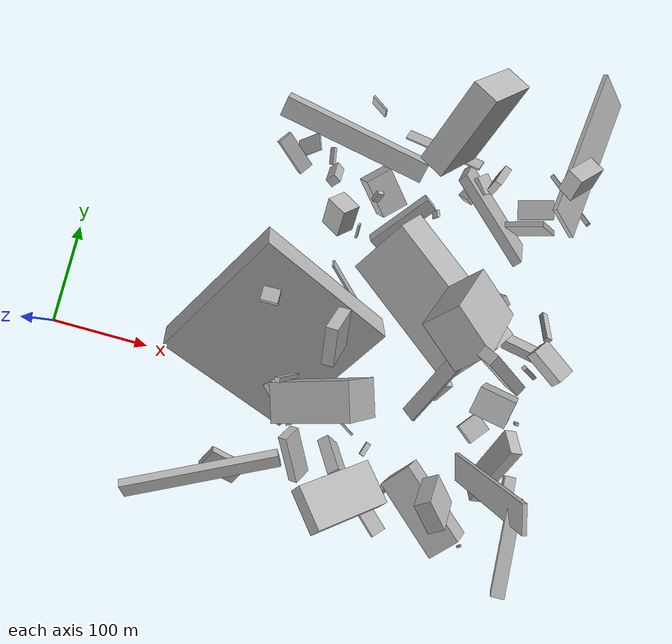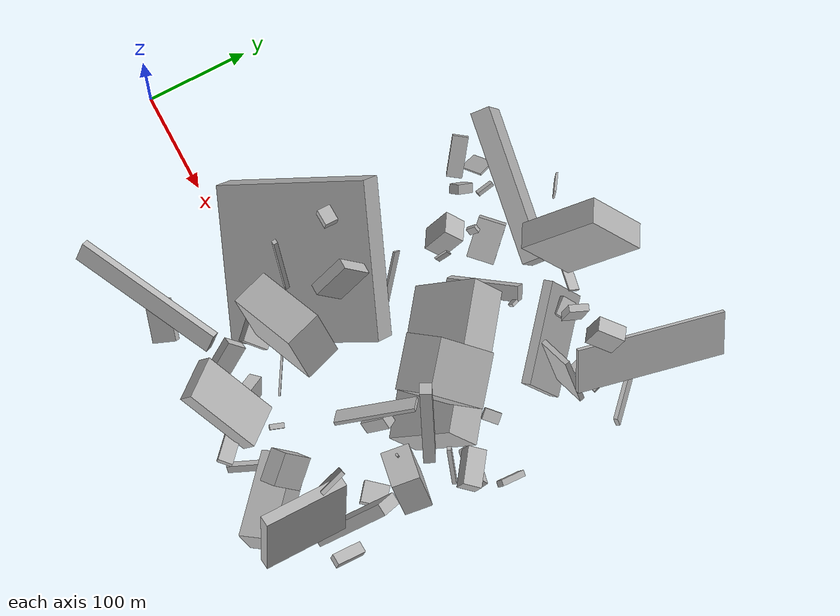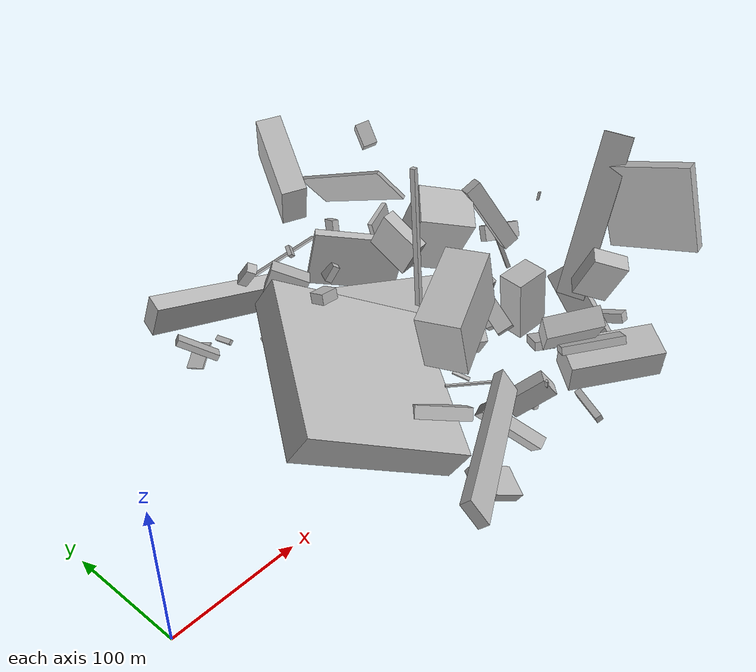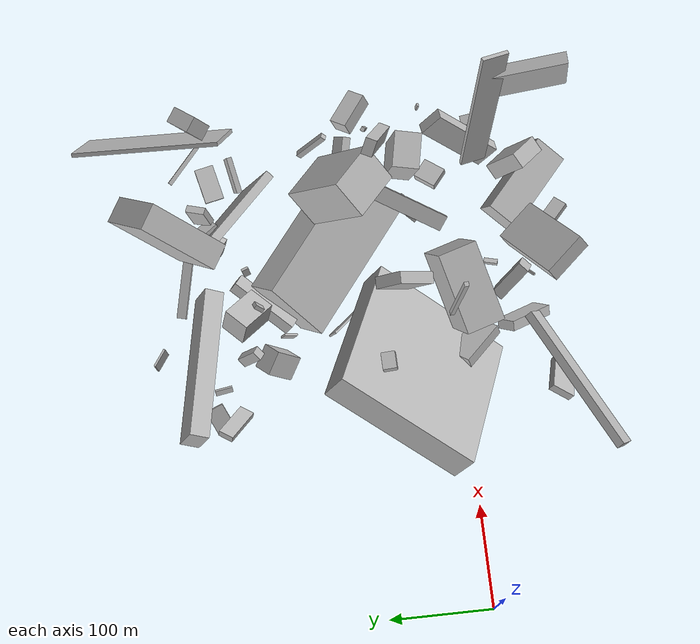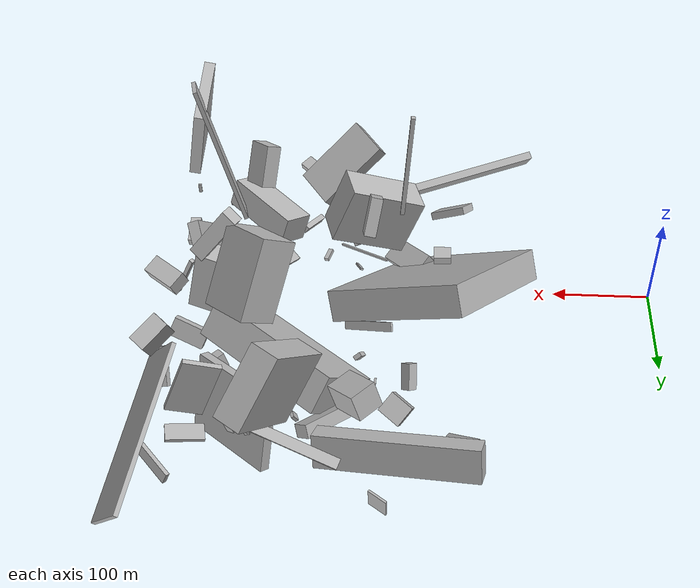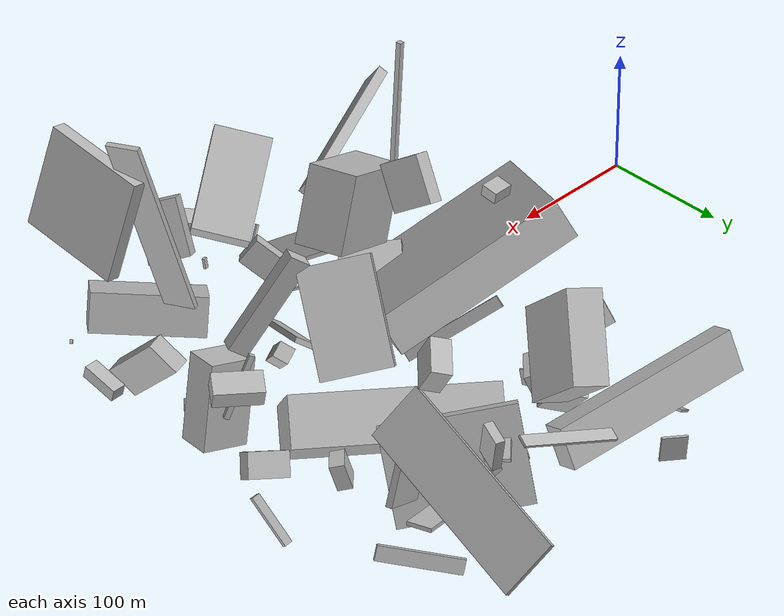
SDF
<sdf version="1.6">
 <world name="default">
  <model name="building_1">
   <static>0</static>
   <pose>264.849977985416 106.44058181233544 84.6204089097445 -2.01697700280411 -0.44693034375789936 2.7563679451558456</pose>
   <link name="link">
    <gravity>0</gravity>
    <pose>0 0 75.0 0 0 0</pose>
    <collision name="collision"><geometry><box><size>150 31 150</size></box></geometry></collision>
    <visual name="visual">
     <cast_shadows>0</cast_shadows>
     <geometry><box><size>150 31 150</size></box></geometry>
     <material>
      <script>
       <uri>model://HANNAS_wall/materials/scripts</uri>
       <uri>model://HANNAS_wall/materials/textures</uri>
       <name>vrc/HANNAS_wall</name>
      </script>
     </material>
    </visual>
   </link>
  </model>
  <model name="building_3">
   <static>0</static>
   <pose>263.7009953151315 -63.7383196793424 79.46305641383938 1.553918782447553 -0.6286492865791705 -1.1026360040005647</pose>
   <link name="link">
    <gravity>0</gravity>
    <pose>0 0 75.0 0 0 0</pose>
    <collision name="collision"><geometry><box><size>8 20 150</size></box></geometry></collision>
    <visual name="visual">
     <cast_shadows>0</cast_shadows>
     <geometry><box><size>8 20 150</size></box></geometry>
     <material>
      <script>
       <uri>model://HANNAS_wall/materials/scripts</uri>
       <uri>model://HANNAS_wall/materials/textures</uri>
       <name>vrc/HANNAS_wall</name>
      </script>
     </material>
    </visual>
   </link>
  </model>
  <model name="building_6">
   <static>0</static>
   <pose>383.94399075331796 95.2214970999192 106.78039868104145 0.9339067111695544 -0.1903255971860133 2.4547610325015774</pose>
   <link name="link">
    <gravity>0</gravity>
    <pose>0 0 20.0 0 0 0</pose>
    <collision name="collision"><geometry><box><size>52 79 40</size></box></geometry></collision>
    <visual name="visual">
     <cast_shadows>0</cast_shadows>
     <geometry><box><size>52 79 40</size></box></geometry>
     <material>
      <script>
       <uri>model://HANNAS_wall/materials/scripts</uri>
       <uri>model://HANNAS_wall/materials/textures</uri>
       <name>vrc/HANNAS_wall</name>
      </script>
     </material>
    </visual>
   </link>
  </model>
  <model name="building_8">
   <static>0</static>
   <pose>385.1747498785552 144.99763910502327 49.589972824680885 2.3259016913742108 -0.023929955335914098 -0.6515366699318969</pose>
   <link name="link">
    <gravity>0</gravity>
    <pose>0 0 38.0 0 0 0</pose>
    <collision name="collision"><geometry><box><size>150 38 76</size></box></geometry></collision>
    <visual name="visual">
     <cast_shadows>0</cast_shadows>
     <geometry><box><size>150 38 76</size></box></geometry>
     <material>
      <script>
       <uri>model://HANNAS_wall/materials/scripts</uri>
       <uri>model://HANNAS_wall/materials/textures</uri>
       <name>vrc/HANNAS_wall</name>
      </script>
     </material>
    </visual>
   </link>
  </model>
  <model name="building_12">
   <static>0</static>
   <pose>341.77327653657176 -40.976510238996866 7.428254835937576 1.727025056933067 0.1631977609604627 1.2708965915113848</pose>
   <link name="link">
    <gravity>0</gravity>
    <pose>0 0 2.5 0 0 0</pose>
    <collision name="collision"><geometry><box><size>14 4 5</size></box></geometry></collision>
    <visual name="visual">
     <cast_shadows>0</cast_shadows>
     <geometry><box><size>14 4 5</size></box></geometry>
     <material>
      <script>
       <uri>model://HANNAS_wall/materials/scripts</uri>
       <uri>model://HANNAS_wall/materials/textures</uri>
       <name>vrc/HANNAS_wall</name>
      </script>
     </material>
    </visual>
   </link>
  </model>
  <model name="building_16">
   <static>0</static>
   <pose>313.4151675149286 193.3849812421438 20.165825439241175 -2.1046970946129013 0.311330232934953 -2.2739135589272155</pose>
   <link name="link">
    <gravity>0</gravity>
    <pose>0 0 7.5 0 0 0</pose>
    <collision name="collision"><geometry><box><size>71 13 15</size></box></geometry></collision>
    <visual name="visual">
     <cast_shadows>0</cast_shadows>
     <geometry><box><size>71 13 15</size></box></geometry>
     <material>
      <script>
       <uri>model://HANNAS_wall/materials/scripts</uri>
       <uri>model://HANNAS_wall/materials/textures</uri>
       <name>vrc/HANNAS_wall</name>
      </script>
     </material>
    </visual>
   </link>
  </model>
  <model name="building_27">
   <static>0</static>
   <pose>300.19884573186056 4.540060153854442 81.78005194714694 0.0020173243054772043 -0.4248302830568203 0.30948812837808026</pose>
   <link name="link">
    <gravity>0</gravity>
    <pose>0 0 29.5 0 0 0</pose>
    <collision name="collision"><geometry><box><size>77 37 59</size></box></geometry></collision>
    <visual name="visual">
     <cast_shadows>0</cast_shadows>
     <geometry><box><size>77 37 59</size></box></geometry>
     <material>
      <script>
       <uri>model://HANNAS_wall/materials/scripts</uri>
       <uri>model://HANNAS_wall/materials/textures</uri>
       <name>vrc/HANNAS_wall</name>
      </script>
     </material>
    </visual>
   </link>
  </model>
  <model name="building_28">
   <static>0</static>
   <pose>250.27088266069612 175.07507582274286 27.637888533658046 -2.1757383056054986 -0.37748198373114317 -0.5509081720300691</pose>
   <link name="link">
    <gravity>0</gravity>
    <pose>0 0 10.5 0 0 0</pose>
    <collision name="collision"><geometry><box><size>24 32 21</size></box></geometry></collision>
    <visual name="visual">
     <cast_shadows>0</cast_shadows>
     <geometry><box><size>24 32 21</size></box></geometry>
     <material>
      <script>
       <uri>model://HANNAS_wall/materials/scripts</uri>
       <uri>model://HANNAS_wall/materials/textures</uri>
       <name>vrc/HANNAS_wall</name>
      </script>
     </material>
    </visual>
   </link>
  </model>
  <model name="building_35">
   <static>0</static>
   <pose>332.41015357844 -70.02120748040157 78.80988284577822 1.4460304723478818 0.25216577824603664 0.7967283314312058</pose>
   <link name="link">
    <gravity>0</gravity>
    <pose>0 0 26.5 0 0 0</pose>
    <collision name="collision"><geometry><box><size>14 7 53</size></box></geometry></collision>
    <visual name="visual">
     <cast_shadows>0</cast_shadows>
     <geometry><box><size>14 7 53</size></box></geometry>
     <material>
      <script>
       <uri>model://HANNAS_wall/materials/scripts</uri>
       <uri>model://HANNAS_wall/materials/textures</uri>
       <name>vrc/HANNAS_wall</name>
      </script>
     </material>
    </visual>
   </link>
  </model>
  <model name="building_37">
   <static>0</static>
   <pose>478.90384116490014 72.8757843723613 59.40028169801141 -0.1852054784174409 0.4100559340193807 2.4796875711877697</pose>
   <link name="link">
    <gravity>0</gravity>
    <pose>0 0 25.0 0 0 0</pose>
    <collision name="collision"><geometry><box><size>4 4 50</size></box></geometry></collision>
    <visual name="visual">
     <cast_shadows>0</cast_shadows>
     <geometry><box><size>4 4 50</size></box></geometry>
     <material>
      <script>
       <uri>model://HANNAS_wall/materials/scripts</uri>
       <uri>model://HANNAS_wall/materials/textures</uri>
       <name>vrc/HANNAS_wall</name>
      </script>
     </material>
    </visual>
   </link>
  </model>
  <model name="building_40">
   <static>0</static>
   <pose>426.83276334786706 -27.397830946614157 76.91111092455172 -0.15695904461921084 -0.20760866715655382 -2.8284619883293396</pose>
   <link name="link">
    <gravity>0</gravity>
    <pose>0 0 75.0 0 0 0</pose>
    <collision name="collision"><geometry><box><size>4 26 150</size></box></geometry></collision>
    <visual name="visual">
     <cast_shadows>0</cast_shadows>
     <geometry><box><size>4 26 150</size></box></geometry>
     <material>
      <script>
       <uri>model://HANNAS_wall/materials/scripts</uri>
       <uri>model://HANNAS_wall/materials/textures</uri>
       <name>vrc/HANNAS_wall</name>
      </script>
     </material>
    </visual>
   </link>
  </model>
  <model name="building_47">
   <static>0</static>
   <pose>279.42964077593916 58.84632375753875 151.57569232297772 1.2205018397641232 0.9221992203990589 1.2761099600544</pose>
   <link name="link">
    <gravity>0</gravity>
    <pose>0 0 5.5 0 0 0</pose>
    <collision name="collision"><geometry><box><size>36 38 11</size></box></geometry></collision>
    <visual name="visual">
     <cast_shadows>0</cast_shadows>
     <geometry><box><size>36 38 11</size></box></geometry>
     <material>
      <script>
       <uri>model://HANNAS_wall/materials/scripts</uri>
       <uri>model://HANNAS_wall/materials/textures</uri>
       <name>vrc/HANNAS_wall</name>
      </script>
     </material>
    </visual>
   </link>
  </model>
  <model name="building_48">
   <static>0</static>
   <pose>491.85999937119203 113.64472242578276 21.357083650907377 2.7595846978810323 0.6568551749512188 -1.9767523282468153</pose>
   <link name="link">
    <gravity>0</gravity>
    <pose>0 0 20.0 0 0 0</pose>
    <collision name="collision"><geometry><box><size>6 6 40</size></box></geometry></collision>
    <visual name="visual">
     <cast_shadows>0</cast_shadows>
     <geometry><box><size>6 6 40</size></box></geometry>
     <material>
      <script>
       <uri>model://HANNAS_wall/materials/scripts</uri>
       <uri>model://HANNAS_wall/materials/textures</uri>
       <name>vrc/HANNAS_wall</name>
      </script>
     </material>
    </visual>
   </link>
  </model>
  <model name="building_49">
   <static>0</static>
   <pose>467.4311597780821 94.81520644377954 24.298497867078407 -0.6224199346196262 0.9224113538434442 0.8329217152398347</pose>
   <link name="link">
    <gravity>0</gravity>
    <pose>0 0 4.5 0 0 0</pose>
    <collision name="collision"><geometry><box><size>19 36 9</size></box></geometry></collision>
    <visual name="visual">
     <cast_shadows>0</cast_shadows>
     <geometry><box><size>19 36 9</size></box></geometry>
     <material>
      <script>
       <uri>model://HANNAS_wall/materials/scripts</uri>
       <uri>model://HANNAS_wall/materials/textures</uri>
       <name>vrc/HANNAS_wall</name>
      </script>
     </material>
    </visual>
   </link>
  </model>
  <model name="building_50">
   <static>0</static>
   <pose>436.1111181656753 184.8401235655158 45.52982840303271 -1.1403158247743472 1.1570768370420978 1.2620464149353214</pose>
   <link name="link">
    <gravity>0</gravity>
    <pose>0 0 48.5 0 0 0</pose>
    <collision name="collision"><geometry><box><size>72 9 97</size></box></geometry></collision>
    <visual name="visual">
     <cast_shadows>0</cast_shadows>
     <geometry><box><size>72 9 97</size></box></geometry>
     <material>
      <script>
       <uri>model://HANNAS_wall/materials/scripts</uri>
       <uri>model://HANNAS_wall/materials/textures</uri>
       <name>vrc/HANNAS_wall</name>
      </script>
     </material>
    </visual>
   </link>
  </model>
  <model name="building_52">
   <static>0</static>
   <pose>453.15363794614495 210.00017500077206 125.73355198526679 1.928041041730047 0.6762885829623353 -3.0582700170921338</pose>
   <link name="link">
    <gravity>0</gravity>
    <pose>0 0 75.0 0 0 0</pose>
    <collision name="collision"><geometry><box><size>4 45 150</size></box></geometry></collision>
    <visual name="visual">
     <cast_shadows>0</cast_shadows>
     <geometry><box><size>4 45 150</size></box></geometry>
     <material>
      <script>
       <uri>model://HANNAS_wall/materials/scripts</uri>
       <uri>model://HANNAS_wall/materials/textures</uri>
       <name>vrc/HANNAS_wall</name>
      </script>
     </material>
    </visual>
   </link>
  </model>
  <model name="building_55">
   <static>0</static>
   <pose>338.8005197570581 239.67007641674851 126.96468109102702 -0.8158017061371099 -0.1535485285662675 -0.5323896993919464</pose>
   <link name="link">
    <gravity>0</gravity>
    <pose>0 0 42.0 0 0 0</pose>
    <collision name="collision"><geometry><box><size>25 65 84</size></box></geometry></collision>
    <visual name="visual">
     <cast_shadows>0</cast_shadows>
     <geometry><box><size>25 65 84</size></box></geometry>
     <material>
      <script>
       <uri>model://HANNAS_wall/materials/scripts</uri>
       <uri>model://HANNAS_wall/materials/textures</uri>
       <name>vrc/HANNAS_wall</name>
      </script>
     </material>
    </visual>
   </link>
  </model>
  <model name="building_57">
   <static>0</static>
   <pose>259.7636837720655 16.43916532561333 120.10430341129023 -0.09192797414868467 -0.01755377443773213 1.6507010341515724</pose>
   <link name="link">
    <gravity>0</gravity>
    <pose>0 0 56.5 0 0 0</pose>
    <collision name="collision"><geometry><box><size>4 4 113</size></box></geometry></collision>
    <visual name="visual">
     <cast_shadows>0</cast_shadows>
     <geometry><box><size>4 4 113</size></box></geometry>
     <material>
      <script>
       <uri>model://HANNAS_wall/materials/scripts</uri>
       <uri>model://HANNAS_wall/materials/textures</uri>
       <name>vrc/HANNAS_wall</name>
      </script>
     </material>
    </visual>
   </link>
  </model>
  <model name="building_63">
   <static>0</static>
   <pose>261.76488506835597 -2.5333747724866256 27.626175817056215 -1.0468640355143244 -0.12363113042927695 2.354926162627423</pose>
   <link name="link">
    <gravity>0</gravity>
    <pose>0 0 13.0 0 0 0</pose>
    <collision name="collision"><geometry><box><size>47 11 26</size></box></geometry></collision>
    <visual name="visual">
     <cast_shadows>0</cast_shadows>
     <geometry><box><size>47 11 26</size></box></geometry>
     <material>
      <script>
       <uri>model://HANNAS_wall/materials/scripts</uri>
       <uri>model://HANNAS_wall/materials/textures</uri>
       <name>vrc/HANNAS_wall</name>
      </script>
     </material>
    </visual>
   </link>
  </model>
  <model name="building_65">
   <static>0</static>
   <pose>250.28606308332283 259.9722137399621 35.848992242970326 0.1385574161805061 -0.39022792253669947 1.3593133731353375</pose>
   <link name="link">
    <gravity>0</gravity>
    <pose>0 0 16.0 0 0 0</pose>
    <collision name="collision"><geometry><box><size>19 150 32</size></box></geometry></collision>
    <visual name="visual">
     <cast_shadows>0</cast_shadows>
     <geometry><box><size>19 150 32</size></box></geometry>
     <material>
      <script>
       <uri>model://HANNAS_wall/materials/scripts</uri>
       <uri>model://HANNAS_wall/materials/textures</uri>
       <name>vrc/HANNAS_wall</name>
      </script>
     </material>
    </visual>
   </link>
  </model>
  <model name="building_74">
   <static>0</static>
   <pose>450.65029940867055 24.17627651441881 41.523613619651954 1.0517269497927673 -1.3188640270415584 -2.7950373361525345</pose>
   <link name="link">
    <gravity>0</gravity>
    <pose>0 0 13.5 0 0 0</pose>
    <collision name="collision"><geometry><box><size>66 36 27</size></box></geometry></collision>
    <visual name="visual">
     <cast_shadows>0</cast_shadows>
     <geometry><box><size>66 36 27</size></box></geometry>
     <material>
      <script>
       <uri>model://HANNAS_wall/materials/scripts</uri>
       <uri>model://HANNAS_wall/materials/textures</uri>
       <name>vrc/HANNAS_wall</name>
      </script>
     </material>
    </visual>
   </link>
  </model>
  <model name="building_75">
   <static>0</static>
   <pose>210.09689161275475 216.05733785943474 22.039633660847727 -0.20992375457774254 -1.0153600646673666 -0.415351651609451</pose>
   <link name="link">
    <gravity>0</gravity>
    <pose>0 0 20.0 0 0 0</pose>
    <collision name="collision"><geometry><box><size>6 15 40</size></box></geometry></collision>
    <visual name="visual">
     <cast_shadows>0</cast_shadows>
     <geometry><box><size>6 15 40</size></box></geometry>
     <material>
      <script>
       <uri>model://HANNAS_wall/materials/scripts</uri>
       <uri>model://HANNAS_wall/materials/textures</uri>
       <name>vrc/HANNAS_wall</name>
      </script>
     </material>
    </visual>
   </link>
  </model>
  <model name="building_77">
   <static>0</static>
   <pose>443.80924175121334 -107.41177282889113 42.67767873915898 -1.8575876461174032 1.1963244071273533 0.5812188273675348</pose>
   <link name="link">
    <gravity>0</gravity>
    <pose>0 0 42.5 0 0 0</pose>
    <collision name="collision"><geometry><box><size>30 34 85</size></box></geometry></collision>
    <visual name="visual">
     <cast_shadows>0</cast_shadows>
     <geometry><box><size>30 34 85</size></box></geometry>
     <material>
      <script>
       <uri>model://HANNAS_wall/materials/scripts</uri>
       <uri>model://HANNAS_wall/materials/textures</uri>
       <name>vrc/HANNAS_wall</name>
      </script>
     </material>
    </visual>
   </link>
  </model>
  <model name="building_83">
   <static>0</static>
   <pose>205.1508831914646 -101.51488816104703 27.923907552441626 1.1153265159937709 -0.46690983356553406 2.862778281353988</pose>
   <link name="link">
    <gravity>0</gravity>
    <pose>0 0 12.0 0 0 0</pose>
    <collision name="collision"><geometry><box><size>40 8 24</size></box></geometry></collision>
    <visual name="visual">
     <cast_shadows>0</cast_shadows>
     <geometry><box><size>40 8 24</size></box></geometry>
     <material>
      <script>
       <uri>model://HANNAS_wall/materials/scripts</uri>
       <uri>model://HANNAS_wall/materials/textures</uri>
       <name>vrc/HANNAS_wall</name>
      </script>
     </material>
    </visual>
   </link>
  </model>
  <model name="building_86">
   <static>0</static>
   <pose>435.0643428989624 210.2794820230467 73.85067551233358 1.5724740635311207 -0.4070667554763227 0.21633887281083966</pose>
   <link name="link">
    <gravity>0</gravity>
    <pose>0 0 2.5 0 0 0</pose>
    <collision name="collision"><geometry><box><size>35 63 5</size></box></geometry></collision>
    <visual name="visual">
     <cast_shadows>0</cast_shadows>
     <geometry><box><size>35 63 5</size></box></geometry>
     <material>
      <script>
       <uri>model://HANNAS_wall/materials/scripts</uri>
       <uri>model://HANNAS_wall/materials/textures</uri>
       <name>vrc/HANNAS_wall</name>
      </script>
     </material>
    </visual>
   </link>
  </model>
  <model name="building_87">
   <static>0</static>
   <pose>446.37364094943223 233.80812437015464 165.99664310537767 0.3390346639219746 -0.40263082046412324 -2.335242362291097</pose>
   <link name="link">
    <gravity>0</gravity>
    <pose>0 0 12.0 0 0 0</pose>
    <collision name="collision"><geometry><box><size>27 15 24</size></box></geometry></collision>
    <visual name="visual">
     <cast_shadows>0</cast_shadows>
     <geometry><box><size>27 15 24</size></box></geometry>
     <material>
      <script>
       <uri>model://HANNAS_wall/materials/scripts</uri>
       <uri>model://HANNAS_wall/materials/textures</uri>
       <name>vrc/HANNAS_wall</name>
      </script>
     </material>
    </visual>
   </link>
  </model>
  <model name="building_88">
   <static>0</static>
   <pose>471.01071539970746 -20.725317996987854 45.2222575306244 1.1474759824305505 -0.7013516435503787 -1.1896160898638812</pose>
   <link name="link">
    <gravity>0</gravity>
    <pose>0 0 6.0 0 0 0</pose>
    <collision name="collision"><geometry><box><size>26 86 12</size></box></geometry></collision>
    <visual name="visual">
     <cast_shadows>0</cast_shadows>
     <geometry><box><size>26 86 12</size></box></geometry>
     <material>
      <script>
       <uri>model://HANNAS_wall/materials/scripts</uri>
       <uri>model://HANNAS_wall/materials/textures</uri>
       <name>vrc/HANNAS_wall</name>
      </script>
     </material>
    </visual>
   </link>
  </model>
  <model name="building_90">
   <static>0</static>
   <pose>411.8450745567304 -51.38570469627577 96.29859334876485 0.44975429526099847 0.2972414691451999 -0.8352007327099311</pose>
   <link name="link">
    <gravity>0</gravity>
    <pose>0 0 21.5 0 0 0</pose>
    <collision name="collision"><geometry><box><size>31 16 43</size></box></geometry></collision>
    <visual name="visual">
     <cast_shadows>0</cast_shadows>
     <geometry><box><size>31 16 43</size></box></geometry>
     <material>
      <script>
       <uri>model://HANNAS_wall/materials/scripts</uri>
       <uri>model://HANNAS_wall/materials/textures</uri>
       <name>vrc/HANNAS_wall</name>
      </script>
     </material>
    </visual>
   </link>
  </model>
  <model name="building_92">
   <static>0</static>
   <pose>392.45933640472003 239.87561676876686 67.67206115456364 -0.018735481827428468 -0.22043409443138365 -1.912399233479467</pose>
   <link name="link">
    <gravity>0</gravity>
    <pose>0 0 14.0 0 0 0</pose>
    <collision name="collision"><geometry><box><size>19 7 28</size></box></geometry></collision>
    <visual name="visual">
     <cast_shadows>0</cast_shadows>
     <geometry><box><size>19 7 28</size></box></geometry>
     <material>
      <script>
       <uri>model://HANNAS_wall/materials/scripts</uri>
       <uri>model://HANNAS_wall/materials/textures</uri>
       <name>vrc/HANNAS_wall</name>
      </script>
     </material>
    </visual>
   </link>
  </model>
  <model name="building_98">
   <static>0</static>
   <pose>451.95776140442206 273.7369989159128 28.841291446256697 0.9773745149831747 1.1387544057573977 0.26525497697860395</pose>
   <link name="link">
    <gravity>0</gravity>
    <pose>0 0 30.5 0 0 0</pose>
    <collision name="collision"><geometry><box><size>11 4 61</size></box></geometry></collision>
    <visual name="visual">
     <cast_shadows>0</cast_shadows>
     <geometry><box><size>11 4 61</size></box></geometry>
     <material>
      <script>
       <uri>model://HANNAS_wall/materials/scripts</uri>
       <uri>model://HANNAS_wall/materials/textures</uri>
       <name>vrc/HANNAS_wall</name>
      </script>
     </material>
    </visual>
   </link>
  </model>
  <model name="building_100">
   <static>0</static>
   <pose>377.479690519708 244.84839736876222 70.08655066058898 1.6894655419196818 -0.9687932270828155 0.5872994060018284</pose>
   <link name="link">
    <gravity>0</gravity>
    <pose>0 0 9.0 0 0 0</pose>
    <collision name="collision"><geometry><box><size>6 15 18</size></box></geometry></collision>
    <visual name="visual">
     <cast_shadows>0</cast_shadows>
     <geometry><box><size>6 15 18</size></box></geometry>
     <material>
      <script>
       <uri>model://HANNAS_wall/materials/scripts</uri>
       <uri>model://HANNAS_wall/materials/textures</uri>
       <name>vrc/HANNAS_wall</name>
      </script>
     </material>
    </visual>
   </link>
  </model>
  <model name="building_102">
   <static>0</static>
   <pose>467.27584512804583 98.59354719825699 93.30717547075552 -1.4170549191829778 1.1955061132500675 -2.05189091665361</pose>
   <link name="link">
    <gravity>0</gravity>
    <pose>0 0 18.0 0 0 0</pose>
    <collision name="collision"><geometry><box><size>16 18 36</size></box></geometry></collision>
    <visual name="visual">
     <cast_shadows>0</cast_shadows>
     <geometry><box><size>16 18 36</size></box></geometry>
     <material>
      <script>
       <uri>model://HANNAS_wall/materials/scripts</uri>
       <uri>model://HANNAS_wall/materials/textures</uri>
       <name>vrc/HANNAS_wall</name>
      </script>
     </material>
    </visual>
   </link>
  </model>
  <model name="building_105">
   <static>0</static>
   <pose>317.63186495360634 -51.61360641765177 40.87970103768118 1.9115428353868684 0.8678070853848543 -0.5336680220454489</pose>
   <link name="link">
    <gravity>0</gravity>
    <pose>0 0 6.0 0 0 0</pose>
    <collision name="collision"><geometry><box><size>21 40 12</size></box></geometry></collision>
    <visual name="visual">
     <cast_shadows>0</cast_shadows>
     <geometry><box><size>21 40 12</size></box></geometry>
     <material>
      <script>
       <uri>model://HANNAS_wall/materials/scripts</uri>
       <uri>model://HANNAS_wall/materials/textures</uri>
       <name>vrc/HANNAS_wall</name>
      </script>
     </material>
    </visual>
   </link>
  </model>
  <model name="building_110">
   <static>0</static>
   <pose>329.80202670287576 -75.77832969426164 109.245681759691 -2.8488475330830303 -0.6270993647107114 -2.6102145863844335</pose>
   <link name="link">
    <gravity>0</gravity>
    <pose>0 0 8.0 0 0 0</pose>
    <collision name="collision"><geometry><box><size>80 43 16</size></box></geometry></collision>
    <visual name="visual">
     <cast_shadows>0</cast_shadows>
     <geometry><box><size>80 43 16</size></box></geometry>
     <material>
      <script>
       <uri>model://HANNAS_wall/materials/scripts</uri>
       <uri>model://HANNAS_wall/materials/textures</uri>
       <name>vrc/HANNAS_wall</name>
      </script>
     </material>
    </visual>
   </link>
  </model>
  <model name="building_113">
   <static>0</static>
   <pose>428.3448277975974 140.86497677214334 24.65702175996998 -2.733790810327212 1.2868097180329694 2.7302953840778725</pose>
   <link name="link">
    <gravity>0</gravity>
    <pose>0 0 5.5 0 0 0</pose>
    <collision name="collision"><geometry><box><size>23 16 11</size></box></geometry></collision>
    <visual name="visual">
     <cast_shadows>0</cast_shadows>
     <geometry><box><size>23 16 11</size></box></geometry>
     <material>
      <script>
       <uri>model://HANNAS_wall/materials/scripts</uri>
       <uri>model://HANNAS_wall/materials/textures</uri>
       <name>vrc/HANNAS_wall</name>
      </script>
     </material>
    </visual>
   </link>
  </model>
  <model name="building_117">
   <static>0</static>
   <pose>210.6770748803418 234.32947793031127 14.301480415176933 1.7698114893841186 0.6395602109697786 -2.66987177910834</pose>
   <link name="link">
    <gravity>0</gravity>
    <pose>0 0 9.0 0 0 0</pose>
    <collision name="collision"><geometry><box><size>27 2 18</size></box></geometry></collision>
    <visual name="visual">
     <cast_shadows>0</cast_shadows>
     <geometry><box><size>27 2 18</size></box></geometry>
     <material>
      <script>
       <uri>model://HANNAS_wall/materials/scripts</uri>
       <uri>model://HANNAS_wall/materials/textures</uri>
       <name>vrc/HANNAS_wall</name>
      </script>
     </material>
    </visual>
   </link>
  </model>
  <model name="building_120">
   <static>0</static>
   <pose>388.9524949444834 29.46554089146433 40.226598946926416 -0.6061786752364379 0.6063220215545979 0.18842489412013746</pose>
   <link name="link">
    <gravity>0</gravity>
    <pose>0 0 14.0 0 0 0</pose>
    <collision name="collision"><geometry><box><size>12 12 28</size></box></geometry></collision>
    <visual name="visual">
     <cast_shadows>0</cast_shadows>
     <geometry><box><size>12 12 28</size></box></geometry>
     <material>
      <script>
       <uri>model://HANNAS_wall/materials/scripts</uri>
       <uri>model://HANNAS_wall/materials/textures</uri>
       <name>vrc/HANNAS_wall</name>
      </script>
     </material>
    </visual>
   </link>
  </model>
  <model name="building_121">
   <static>0</static>
   <pose>300.7354698022841 269.4481436545935 54.23933508618187 -0.7757810223037184 1.1102333114887952 -1.0606333120783609</pose>
   <link name="link">
    <gravity>0</gravity>
    <pose>0 0 40.0 0 0 0</pose>
    <collision name="collision"><geometry><box><size>2 10 80</size></box></geometry></collision>
    <visual name="visual">
     <cast_shadows>0</cast_shadows>
     <geometry><box><size>2 10 80</size></box></geometry>
     <material>
      <script>
       <uri>model://HANNAS_wall/materials/scripts</uri>
       <uri>model://HANNAS_wall/materials/textures</uri>
       <name>vrc/HANNAS_wall</name>
      </script>
     </material>
    </visual>
   </link>
  </model>
  <model name="building_123">
   <static>0</static>
   <pose>304.043221773038 5.949285109548616 35.90923090087831 -0.5826594500570483 -0.9269464965059628 -2.2270482916257834</pose>
   <link name="link">
    <gravity>0</gravity>
    <pose>0 0 1.5 0 0 0</pose>
    <collision name="collision"><geometry><box><size>2 16 3</size></box></geometry></collision>
    <visual name="visual">
     <cast_shadows>0</cast_shadows>
     <geometry><box><size>2 16 3</size></box></geometry>
     <material>
      <script>
       <uri>model://HANNAS_wall/materials/scripts</uri>
       <uri>model://HANNAS_wall/materials/textures</uri>
       <name>vrc/HANNAS_wall</name>
      </script>
     </material>
    </visual>
   </link>
  </model>
  <model name="building_125">
   <static>0</static>
   <pose>278.4369606258404 169.9851925936862 30.80545629070174 -0.08827197197309776 -0.3611642621064791 1.58031113577038</pose>
   <link name="link">
    <gravity>0</gravity>
    <pose>0 0 6.0 0 0 0</pose>
    <collision name="collision"><geometry><box><size>13 2 12</size></box></geometry></collision>
    <visual name="visual">
     <cast_shadows>0</cast_shadows>
     <geometry><box><size>13 2 12</size></box></geometry>
     <material>
      <script>
       <uri>model://HANNAS_wall/materials/scripts</uri>
       <uri>model://HANNAS_wall/materials/textures</uri>
       <name>vrc/HANNAS_wall</name>
      </script>
     </material>
    </visual>
   </link>
  </model>
  <model name="building_127">
   <static>0</static>
   <pose>389.26476839987953 39.86866911599325 65.87080039002132 -0.5847466538658214 -0.39539639821440753 1.1539597967627635</pose>
   <link name="link">
    <gravity>0</gravity>
    <pose>0 0 2.0 0 0 0</pose>
    <collision name="collision"><geometry><box><size>80 16 4</size></box></geometry></collision>
    <visual name="visual">
     <cast_shadows>0</cast_shadows>
     <geometry><box><size>80 16 4</size></box></geometry>
     <material>
      <script>
       <uri>model://HANNAS_wall/materials/scripts</uri>
       <uri>model://HANNAS_wall/materials/textures</uri>
       <name>vrc/HANNAS_wall</name>
      </script>
     </material>
    </visual>
   </link>
  </model>
  <model name="building_130">
   <static>0</static>
   <pose>367.92088179545055 -87.10511300245533 15.317137647129664 -2.7158278016906965 0.9724128887988529 -0.10730039759390664</pose>
   <link name="link">
    <gravity>0</gravity>
    <pose>0 0 3.0 0 0 0</pose>
    <collision name="collision"><geometry><box><size>8 33 6</size></box></geometry></collision>
    <visual name="visual">
     <cast_shadows>0</cast_shadows>
     <geometry><box><size>8 33 6</size></box></geometry>
     <material>
      <script>
       <uri>model://HANNAS_wall/materials/scripts</uri>
       <uri>model://HANNAS_wall/materials/textures</uri>
       <name>vrc/HANNAS_wall</name>
      </script>
     </material>
    </visual>
   </link>
  </model>
  <model name="building_131">
   <static>0</static>
   <pose>218.8245856010361 78.31079779228199 119.43919987968472 -0.1561037657838934 -0.0005595667777544423 0.024042447532744635</pose>
   <link name="link">
    <gravity>0</gravity>
    <pose>0 0 4.5 0 0 0</pose>
    <collision name="collision"><geometry><box><size>16 13 9</size></box></geometry></collision>
    <visual name="visual">
     <cast_shadows>0</cast_shadows>
     <geometry><box><size>16 13 9</size></box></geometry>
     <material>
      <script>
       <uri>model://HANNAS_wall/materials/scripts</uri>
       <uri>model://HANNAS_wall/materials/textures</uri>
       <name>vrc/HANNAS_wall</name>
      </script>
     </material>
    </visual>
   </link>
  </model>
  <model name="building_132">
   <static>0</static>
   <pose>300.95164651770824 215.00876672239744 68.98656019601341 -1.4128411096798645 1.1717777340362738 2.49855107388524</pose>
   <link name="link">
    <gravity>0</gravity>
    <pose>0 0 13.0 0 0 0</pose>
    <collision name="collision"><geometry><box><size>25 38 26</size></box></geometry></collision>
    <visual name="visual">
     <cast_shadows>0</cast_shadows>
     <geometry><box><size>25 38 26</size></box></geometry>
     <material>
      <script>
       <uri>model://HANNAS_wall/materials/scripts</uri>
       <uri>model://HANNAS_wall/materials/textures</uri>
       <name>vrc/HANNAS_wall</name>
      </script>
     </material>
    </visual>
   </link>
  </model>
  <model name="building_139">
   <static>0</static>
   <pose>487.9056293236978 -27.891528112947412 31.564805329108054 -0.030442968896895423 -1.3068134939842804 1.6372197580345815</pose>
   <link name="link">
    <gravity>0</gravity>
    <pose>0 0 14.5 0 0 0</pose>
    <collision name="collision"><geometry><box><size>10 11 29</size></box></geometry></collision>
    <visual name="visual">
     <cast_shadows>0</cast_shadows>
     <geometry><box><size>10 11 29</size></box></geometry>
     <material>
      <script>
       <uri>model://HANNAS_wall/materials/scripts</uri>
       <uri>model://HANNAS_wall/materials/textures</uri>
       <name>vrc/HANNAS_wall</name>
      </script>
     </material>
    </visual>
   </link>
  </model>
  <model name="building_141">
   <static>0</static>
   <pose>379.8175485241178 231.19051053065743 42.98647748270751 0.15796562495472433 -1.0230042262376606 -0.6550972012048868</pose>
   <link name="link">
    <gravity>0</gravity>
    <pose>0 0 4.0 0 0 0</pose>
    <collision name="collision"><geometry><box><size>19 20 8</size></box></geometry></collision>
    <visual name="visual">
     <cast_shadows>0</cast_shadows>
     <geometry><box><size>19 20 8</size></box></geometry>
     <material>
      <script>
       <uri>model://HANNAS_wall/materials/scripts</uri>
       <uri>model://HANNAS_wall/materials/textures</uri>
       <name>vrc/HANNAS_wall</name>
      </script>
     </material>
    </visual>
   </link>
  </model>
  <model name="building_145">
   <static>0</static>
   <pose>307.7853085569209 -74.20241215158579 62.596592515785986 2.4900006025724295 -0.3260964945759534 1.5935469489786245</pose>
   <link name="link">
    <gravity>0</gravity>
    <pose>0 0 15.0 0 0 0</pose>
    <collision name="collision"><geometry><box><size>2 2 30</size></box></geometry></collision>
    <visual name="visual">
     <cast_shadows>0</cast_shadows>
     <geometry><box><size>2 2 30</size></box></geometry>
     <material>
      <script>
       <uri>model://HANNAS_wall/materials/scripts</uri>
       <uri>model://HANNAS_wall/materials/textures</uri>
       <name>vrc/HANNAS_wall</name>
      </script>
     </material>
    </visual>
   </link>
  </model>
  <model name="building_150">
   <static>0</static>
   <pose>312.85077011221176 82.46429402703828 28.7391596966867 -0.9198126400365322 -0.35167284762310885 0.581947842853281</pose>
   <link name="link">
    <gravity>0</gravity>
    <pose>0 0 40.0 0 0 0</pose>
    <collision name="collision"><geometry><box><size>2 9 80</size></box></geometry></collision>
    <visual name="visual">
     <cast_shadows>0</cast_shadows>
     <geometry><box><size>2 9 80</size></box></geometry>
     <material>
      <script>
       <uri>model://HANNAS_wall/materials/scripts</uri>
       <uri>model://HANNAS_wall/materials/textures</uri>
       <name>vrc/HANNAS_wall</name>
      </script>
     </material>
    </visual>
   </link>
  </model>
  <model name="building_152">
   <static>0</static>
   <pose>478.3911669682822 -79.8856929978619 123.84337262856948 -0.21742647836618495 0.1637726374674187 1.606265071679343</pose>
   <link name="link">
    <gravity>0</gravity>
    <pose>0 0 40.0 0 0 0</pose>
    <collision name="collision"><geometry><box><size>80 11 80</size></box></geometry></collision>
    <visual name="visual">
     <cast_shadows>0</cast_shadows>
     <geometry><box><size>80 11 80</size></box></geometry>
     <material>
      <script>
       <uri>model://HANNAS_wall/materials/scripts</uri>
       <uri>model://HANNAS_wall/materials/textures</uri>
       <name>vrc/HANNAS_wall</name>
      </script>
     </material>
    </visual>
   </link>
  </model>
  <model name="building_156">
   <static>0</static>
   <pose>455.6060701803686 59.04678227516868 98.3205204324887 0.05418426366654462 -0.6245738642562433 -0.4969172456572681</pose>
   <link name="link">
    <gravity>0</gravity>
    <pose>0 0 40.0 0 0 0</pose>
    <collision name="collision"><geometry><box><size>16 11 80</size></box></geometry></collision>
    <visual name="visual">
     <cast_shadows>0</cast_shadows>
     <geometry><box><size>16 11 80</size></box></geometry>
     <material>
      <script>
       <uri>model://HANNAS_wall/materials/scripts</uri>
       <uri>model://HANNAS_wall/materials/textures</uri>
       <name>vrc/HANNAS_wall</name>
      </script>
     </material>
    </visual>
   </link>
  </model>
  <model name="building_157">
   <static>0</static>
   <pose>436.9273548083171 -0.7620992988745883 10.214866693913025 2.822069565104391 -1.4179178784063882 1.2075850593217563</pose>
   <link name="link">
    <gravity>0</gravity>
    <pose>0 0 12.0 0 0 0</pose>
    <collision name="collision"><geometry><box><size>9 21 24</size></box></geometry></collision>
    <visual name="visual">
     <cast_shadows>0</cast_shadows>
     <geometry><box><size>9 21 24</size></box></geometry>
     <material>
      <script>
       <uri>model://HANNAS_wall/materials/scripts</uri>
       <uri>model://HANNAS_wall/materials/textures</uri>
       <name>vrc/HANNAS_wall</name>
      </script>
     </material>
    </visual>
   </link>
  </model>
  <model name="building_161">
   <static>0</static>
   <pose>271.37535064970825 -63.44612971066754 29.006557451836024 0.8500961012103709 -0.5315512579454569 2.0429863443897798</pose>
   <link name="link">
    <gravity>0</gravity>
    <pose>0 0 5.0 0 0 0</pose>
    <collision name="collision"><geometry><box><size>54 20 10</size></box></geometry></collision>
    <visual name="visual">
     <cast_shadows>0</cast_shadows>
     <geometry><box><size>54 20 10</size></box></geometry>
     <material>
      <script>
       <uri>model://HANNAS_wall/materials/scripts</uri>
       <uri>model://HANNAS_wall/materials/textures</uri>
       <name>vrc/HANNAS_wall</name>
      </script>
     </material>
    </visual>
   </link>
  </model>
  <model name="building_162">
   <static>0</static>
   <pose>347.30033378158726 204.15661087167214 35.585951183229064 2.9740035103228766 -1.0935316069622423 0.5075644822509545</pose>
   <link name="link">
    <gravity>0</gravity>
    <pose>0 0 1.5 0 0 0</pose>
    <collision name="collision"><geometry><box><size>9 7 3</size></box></geometry></collision>
    <visual name="visual">
     <cast_shadows>0</cast_shadows>
     <geometry><box><size>9 7 3</size></box></geometry>
     <material>
      <script>
       <uri>model://HANNAS_wall/materials/scripts</uri>
       <uri>model://HANNAS_wall/materials/textures</uri>
       <name>vrc/HANNAS_wall</name>
      </script>
     </material>
    </visual>
   </link>
  </model>
  <model name="building_163">
   <static>0</static>
   <pose>231.63053572017952 236.18744251824558 18.85139132453074 -0.8740400571470514 0.02577497274269909 -1.3959380706338151</pose>
   <link name="link">
    <gravity>0</gravity>
    <pose>0 0 2.5 0 0 0</pose>
    <collision name="collision"><geometry><box><size>17 4 5</size></box></geometry></collision>
    <visual name="visual">
     <cast_shadows>0</cast_shadows>
     <geometry><box><size>17 4 5</size></box></geometry>
     <material>
      <script>
       <uri>model://HANNAS_wall/materials/scripts</uri>
       <uri>model://HANNAS_wall/materials/textures</uri>
       <name>vrc/HANNAS_wall</name>
      </script>
     </material>
    </visual>
   </link>
  </model>
  <model name="building_166">
   <static>0</static>
   <pose>286.0007192753486 189.6727098889824 104.2569948365087 -0.6054508487564164 0.6481636434276954 0.3092938880896414</pose>
   <link name="link">
    <gravity>0</gravity>
    <pose>0 0 5.0 0 0 0</pose>
    <collision name="collision"><geometry><box><size>7 4 10</size></box></geometry></collision>
    <visual name="visual">
     <cast_shadows>0</cast_shadows>
     <geometry><box><size>7 4 10</size></box></geometry>
     <material>
      <script>
       <uri>model://HANNAS_wall/materials/scripts</uri>
       <uri>model://HANNAS_wall/materials/textures</uri>
       <name>vrc/HANNAS_wall</name>
      </script>
     </material>
    </visual>
   </link>
  </model>
  <model name="building_169">
   <static>0</static>
   <pose>326.4916766882315 -28.783862720721118 35.413262135766104 1.4494390683319998 0.11876874820189742 -2.13178240029406</pose>
   <link name="link">
    <gravity>0</gravity>
    <pose>0 0 29.5 0 0 0</pose>
    <collision name="collision"><geometry><box><size>2 2 59</size></box></geometry></collision>
    <visual name="visual">
     <cast_shadows>0</cast_shadows>
     <geometry><box><size>2 2 59</size></box></geometry>
     <material>
      <script>
       <uri>model://HANNAS_wall/materials/scripts</uri>
       <uri>model://HANNAS_wall/materials/textures</uri>
       <name>vrc/HANNAS_wall</name>
      </script>
     </material>
    </visual>
   </link>
  </model>
  <model name="building_171">
   <static>0</static>
   <pose>452.55334112494245 28.896095715640136 153.89800838015796 3.1387332317006935 1.4255605778670375 1.768058275137841</pose>
   <link name="link">
    <gravity>0</gravity>
    <pose>0 0 1.0 0 0 0</pose>
    <collision name="collision"><geometry><box><size>8 3 2</size></box></geometry></collision>
    <visual name="visual">
     <cast_shadows>0</cast_shadows>
     <geometry><box><size>8 3 2</size></box></geometry>
     <material>
      <script>
       <uri>model://HANNAS_wall/materials/scripts</uri>
       <uri>model://HANNAS_wall/materials/textures</uri>
       <name>vrc/HANNAS_wall</name>
      </script>
     </material>
    </visual>
   </link>
  </model>
  <model name="building_174">
   <static>0</static>
   <pose>266.2652013593558 293.08008797512457 26.371631318483136 -0.039216847593041 -0.045137915154179635 -0.5955364785875458</pose>
   <link name="link">
    <gravity>0</gravity>
    <pose>0 0 10.0 0 0 0</pose>
    <collision name="collision"><geometry><box><size>19 2 20</size></box></geometry></collision>
    <visual name="visual">
     <cast_shadows>0</cast_shadows>
     <geometry><box><size>19 2 20</size></box></geometry>
     <material>
      <script>
       <uri>model://HANNAS_wall/materials/scripts</uri>
       <uri>model://HANNAS_wall/materials/textures</uri>
       <name>vrc/HANNAS_wall</name>
      </script>
     </material>
    </visual>
   </link>
  </model>
  <model name="building_175">
   <static>0</static>
   <pose>460.6796808924642 -108.3449098310723 17.909693087659868 0.01688808039297588 0.6848013243353124 -2.45416523778057</pose>
   <link name="link">
    <gravity>0</gravity>
    <pose>0 0 1.5 0 0 0</pose>
    <collision name="collision"><geometry><box><size>4 2 3</size></box></geometry></collision>
    <visual name="visual">
     <cast_shadows>0</cast_shadows>
     <geometry><box><size>4 2 3</size></box></geometry>
     <material>
      <script>
       <uri>model://HANNAS_wall/materials/scripts</uri>
       <uri>model://HANNAS_wall/materials/textures</uri>
       <name>vrc/HANNAS_wall</name>
      </script>
     </material>
    </visual>
   </link>
  </model>
  <model name="building_179">
   <static>0</static>
   <pose>240.49530706887808 206.29890806195655 97.99210902768031 -2.272842503550337 -0.833421854790757 -1.5481006295277082</pose>
   <link name="link">
    <gravity>0</gravity>
    <pose>0 0 4.5 0 0 0</pose>
    <collision name="collision"><geometry><box><size>23 10 9</size></box></geometry></collision>
    <visual name="visual">
     <cast_shadows>0</cast_shadows>
     <geometry><box><size>23 10 9</size></box></geometry>
     <material>
      <script>
       <uri>model://HANNAS_wall/materials/scripts</uri>
       <uri>model://HANNAS_wall/materials/textures</uri>
       <name>vrc/HANNAS_wall</name>
      </script>
     </material>
    </visual>
   </link>
  </model>
  <model name="building_183">
   <static>0</static>
   <pose>458.5477127017488 237.5652709543777 45.93577949234745 1.79711547328134 0.06363206964128673 -1.3140271517920916</pose>
   <link name="link">
    <gravity>0</gravity>
    <pose>0 0 17.5 0 0 0</pose>
    <collision name="collision"><geometry><box><size>19 3 35</size></box></geometry></collision>
    <visual name="visual">
     <cast_shadows>0</cast_shadows>
     <geometry><box><size>19 3 35</size></box></geometry>
     <material>
      <script>
       <uri>model://HANNAS_wall/materials/scripts</uri>
       <uri>model://HANNAS_wall/materials/textures</uri>
       <name>vrc/HANNAS_wall</name>
      </script>
     </material>
    </visual>
   </link>
  </model>
 </world>
</sdf>
